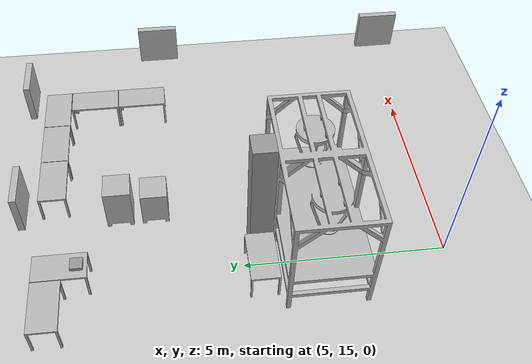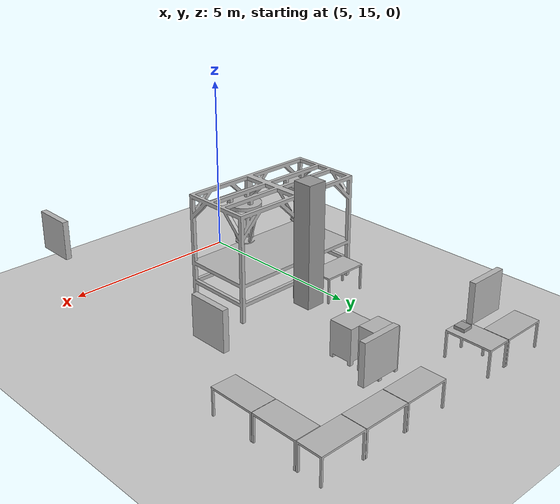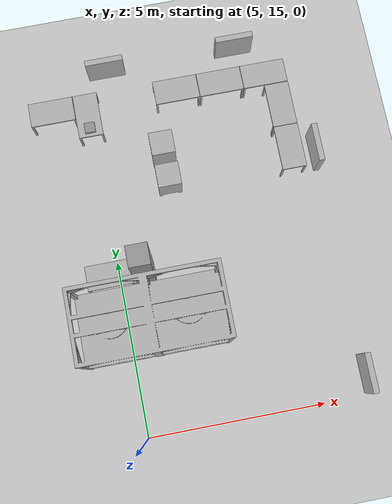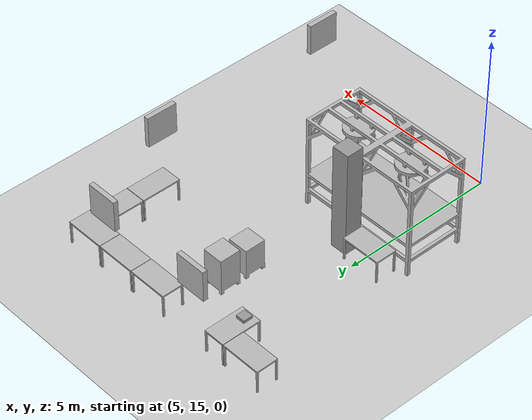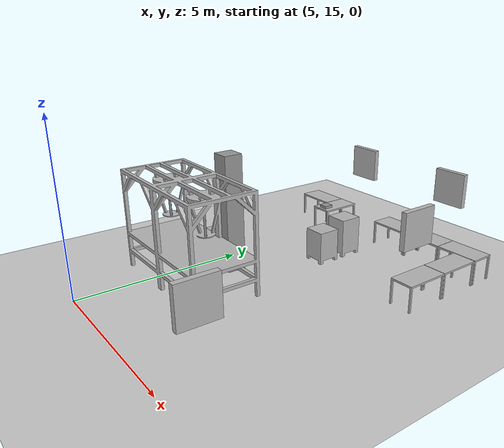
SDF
<sdf version="1.7">
 <world name="default">
  <model name="ground_plane">
   <static>1</static>
   <link name="link">
    <collision name="collision">
     <geometry><plane><normal>0 0 1</normal><size>100 100</size></plane></geometry>
     <surface>
      <contact><collide_bitmask>65535</collide_bitmask></contact>
      <friction><ode><mu>100</mu><mu2>50</mu2></ode></friction>
     </surface>
    </collision>
    <visual name="visual">
     <cast_shadows>0</cast_shadows>
     <geometry><plane><normal>0 0 1</normal><size>100 100</size></plane></geometry>
     <material>
      <script><uri>file://media/materials/scripts/gazebo.material</uri><name>Gazebo/Grey</name></script>
     </material>
    </visual>
   </link>
  </model>
  <model name="crta_stup">
   <link name="link_0">
    <inertial>
     <mass>1</mass>
     <inertia>
      <ixx>0.166667</ixx>
      <ixy>0</ixy>
      <ixz>0</ixz>
      <iyy>0.166667</iyy>
      <iyz>0</iyz>
      <izz>0.166667</izz>
     </inertia>
    </inertial>
    <visual name="visual">
     <geometry><box><size>0.56 0.56 3.5</size></box></geometry>
     <material>
      <lighting>1</lighting>
      <script><uri>file://media/materials/scripts/gazebo.material</uri><name>Gazebo/Grey</name></script>
      <shader type="pixel"><normal_map>__default__</normal_map></shader>
      <ambient>0.3 0.3 0.3 1</ambient>
      <diffuse>0.7 0.7 0.7 1</diffuse>
      <specular>0.01 0.01 0.01 1</specular>
      <emissive>0 0 0 1</emissive>
     </material>
    </visual>
    <collision name="collision">
     <geometry><box><size>0.56 0.56 3.5</size></box></geometry>
     <surface>
      <friction>
       <ode><mu>1</mu><mu2>1</mu2><fdir1>0 0 0</fdir1><slip1>0</slip1><slip2>0</slip2></ode>
       <torsional>
        <coefficient>1</coefficient>
        <patch_radius>0</patch_radius>
        <surface_radius>0</surface_radius>
        <use_patch_radius>1</use_patch_radius>
        <ode><slip>0</slip></ode>
       </torsional>
      </friction>
      <bounce><restitution_coefficient>0</restitution_coefficient><threshold>1e+06</threshold></bounce>
      <contact>
       <collide_without_contact>0</collide_without_contact>
       <collide_without_contact_bitmask>1</collide_without_contact_bitmask>
       <collide_bitmask>1</collide_bitmask>
       <ode>
        <soft_cfm>0</soft_cfm>
        <soft_erp>0.2</soft_erp>
        <kp>1e+13</kp>
        <kd>1</kd>
        <max_vel>0.01</max_vel>
        <min_depth>0</min_depth>
       </ode>
       <bullet>
        <split_impulse>1</split_impulse>
        <split_impulse_penetration_threshold>-0.01</split_impulse_penetration_threshold>
        <soft_cfm>0</soft_cfm>
        <soft_erp>0.2</soft_erp>
        <kp>1e+13</kp>
        <kd>1</kd>
       </bullet>
      </contact>
     </surface>
    </collision>
   </link>
   <static>1</static>
   <pose>5.74 19.52 1.75 0 -0 0</pose>
  </model>
  <model name="stolac1_clone_7_clone_0">
   <static>1</static>
   <link name="base_link">
    <visual name="visual">
     <geometry>
      <mesh><uri>model://stolac1/meshes/crta_stolac1.STL</uri><scale>0.001 0.001 0.001</scale></mesh>
     </geometry>
    </visual>
    <collision name="collision">
     <pose>0.645 0.35 0.375 0 -0 0</pose>
     <geometry><box><size>1.29 0.7 0.75</size></box></geometry>
    </collision>
   </link>
   <pose>3.28164 24.25 0 0 -0 0</pose>
  </model>
  <model name="stolac1_clone_8">
   <static>1</static>
   <link name="base_link">
    <visual name="visual">
     <geometry>
      <mesh><uri>model://stolac1/meshes/crta_stolac1.STL</uri><scale>0.001 0.001 0.001</scale></mesh>
     </geometry>
    </visual>
    <collision name="collision">
     <pose>0.645 0.35 0.375 0 -0 0</pose>
     <geometry><box><size>1.29 0.7 0.75</size></box></geometry>
    </collision>
   </link>
   <pose>5.28721 23.6603 0 0 -0 1.5708</pose>
  </model>
  <model name="stolac1_clone_7_clone_0_clone">
   <static>1</static>
   <link name="base_link">
    <visual name="visual">
     <geometry>
      <mesh><uri>model://stolac1/meshes/crta_stolac1.STL</uri><scale>0.001 0.001 0.001</scale></mesh>
     </geometry>
    </visual>
    <collision name="collision">
     <pose>0.645 0.35 0.375 0 -0 0</pose>
     <geometry><box><size>1.29 0.7 0.75</size></box></geometry>
    </collision>
   </link>
   <pose>9.55232 24.25 0 0 -0 0</pose>
  </model>
  <model name="stolac1_clone_7_clone_0_clone_0">
   <static>1</static>
   <link name="base_link">
    <visual name="visual">
     <geometry>
      <mesh><uri>model://stolac1/meshes/crta_stolac1.STL</uri><scale>0.001 0.001 0.001</scale></mesh>
     </geometry>
    </visual>
    <collision name="collision">
     <pose>0.645 0.35 0.375 0 -0 0</pose>
     <geometry><box><size>1.29 0.7 0.75</size></box></geometry>
    </collision>
   </link>
   <pose>8.2516 24.25 0 0 -0 0</pose>
  </model>
  <model name="stolac1_clone_7_clone_0_clone_1">
   <static>1</static>
   <link name="base_link">
    <visual name="visual">
     <geometry>
      <mesh><uri>model://stolac1/meshes/crta_stolac1.STL</uri><scale>0.001 0.001 0.001</scale></mesh>
     </geometry>
    </visual>
    <collision name="collision">
     <pose>0.645 0.35 0.375 0 -0 0</pose>
     <geometry><box><size>1.29 0.7 0.75</size></box></geometry>
    </collision>
   </link>
   <pose>6.94989 24.25 0 0 -0 0</pose>
  </model>
  <model name="stolac1_clone_8_clone">
   <static>1</static>
   <link name="base_link">
    <visual name="visual">
     <geometry>
      <mesh><uri>model://stolac1/meshes/crta_stolac1.STL</uri><scale>0.001 0.001 0.001</scale></mesh>
     </geometry>
    </visual>
    <collision name="collision">
     <pose>0.645 0.35 0.375 0 -0 0</pose>
     <geometry><box><size>1.29 0.7 0.75</size></box></geometry>
    </collision>
   </link>
   <pose>10.845 22.9418 0 0 -0 1.5708</pose>
  </model>
  <model name="stolac1_clone_8_clone_0">
   <static>1</static>
   <link name="base_link">
    <visual name="visual">
     <geometry>
      <mesh><uri>model://stolac1/meshes/crta_stolac1.STL</uri><scale>0.001 0.001 0.001</scale></mesh>
     </geometry>
    </visual>
    <collision name="collision">
     <pose>0.645 0.35 0.375 0 -0 0</pose>
     <geometry><box><size>1.29 0.7 0.75</size></box></geometry>
    </collision>
   </link>
   <pose>10.8463 21.6409 0 0 -0 1.5708</pose>
  </model>
  <model name="crta_delta_robot">
   <model name="delta_robot">
    <static>1</static>
    <link name="base_link">
     <visual name="visual">
      <geometry>
       <mesh><uri>model://delta_robot/meshes/crta_delta_robot.STL</uri><scale>0.001 0.001 0.001</scale></mesh>
      </geometry>
     </visual>
     <collision name="collision">
      <pose>2 1 1.5 0 -0 0</pose>
      <geometry><box><size>4 2 3</size></box></geometry>
     </collision>
    </link>
    <pose>1e-06 5e-06 0 0 -0 0</pose>
   </model>
   <static>0</static>
   <pose>3.74 17.15 0 0 -0 0</pose>
  </model>
  <model name="stolac1_clone_7_clone_0_clone_1_clone">
   <static>1</static>
   <link name="base_link">
    <visual name="visual">
     <geometry>
      <mesh><uri>model://stolac1/meshes/crta_stolac1.STL</uri><scale>0.001 0.001 0.001</scale></mesh>
     </geometry>
    </visual>
    <collision name="collision">
     <pose>0.645 0.35 0.375 0 -0 0</pose>
     <geometry><box><size>1.29 0.7 0.75</size></box></geometry>
    </collision>
   </link>
   <pose>4.10999 19.2429 0 0 -0 0</pose>
  </model>
  <model name="kutija1_0_clone_0">
   <static>1</static>
   <link name="base_link">
    <visual name="visual">
     <geometry>
      <mesh><uri>model://kutija2/meshes/crta_kutija2.STL</uri><scale>0.001 0.001 0.001</scale></mesh>
     </geometry>
    </visual>
    <collision name="collision">
     <pose>0.335 0.335 0.5 0 -0 0</pose>
     <geometry><box><size>0.67 0.67 1</size></box></geometry>
    </collision>
   </link>
   <pose>6.55778 21.7269 0 0 -0 0</pose>
  </model>
  <model name="kutija1_clone_1_clone">
   <static>1</static>
   <link name="base_link">
    <visual name="visual">
     <geometry>
      <mesh><uri>model://kutija1/meshes/crta_kutija1.STL</uri><scale>0.001 0.001 0.001</scale></mesh>
     </geometry>
    </visual>
    <collision name="collision">
     <pose>0.335 0.335 0.6 0 -0 0</pose>
     <geometry><box><size>0.67 0.67 1.2</size></box></geometry>
    </collision>
   </link>
   <pose>6.54763 22.6166 0 0 -0 0</pose>
  </model>
  <model name="crta_astro_clone_1">
   <link name="link_1">
    <inertial>
     <mass>1</mass>
     <inertia>
      <ixx>0.166667</ixx>
      <ixy>0</ixy>
      <ixz>0</ixz>
      <iyy>0.166667</iyy>
      <iyz>0</iyz>
      <izz>0.166667</izz>
     </inertia>
    </inertial>
    <visual name="visual">
     <geometry><box><size>0.3 0.3 0.09</size></box></geometry>
     <material>
      <lighting>1</lighting>
      <script><uri>file://media/materials/scripts/gazebo.material</uri><name>Gazebo/Grey</name></script>
      <shader type="pixel"><normal_map>__default__</normal_map></shader>
      <ambient>0.3 0.3 0.3 1</ambient>
      <diffuse>0.7 0.7 0.7 1</diffuse>
      <specular>0.01 0.01 0.01 1</specular>
      <emissive>0 0 0 1</emissive>
     </material>
    </visual>
    <collision name="collision">
     <geometry><box><size>0.3 0.3 0.09</size></box></geometry>
     <surface>
      <friction>
       <ode><mu>1</mu><mu2>1</mu2><fdir1>0 0 0</fdir1><slip1>0</slip1><slip2>0</slip2></ode>
       <torsional>
        <coefficient>1</coefficient>
        <patch_radius>0</patch_radius>
        <surface_radius>0</surface_radius>
        <use_patch_radius>1</use_patch_radius>
        <ode><slip>0</slip></ode>
       </torsional>
      </friction>
      <bounce><restitution_coefficient>0</restitution_coefficient><threshold>1e+06</threshold></bounce>
      <contact>
       <collide_without_contact>0</collide_without_contact>
       <collide_without_contact_bitmask>1</collide_without_contact_bitmask>
       <collide_bitmask>1</collide_bitmask>
       <ode>
        <soft_cfm>0</soft_cfm>
        <soft_erp>0.2</soft_erp>
        <kp>1e+13</kp>
        <kd>1</kd>
        <max_vel>0.01</max_vel>
        <min_depth>0</min_depth>
       </ode>
       <bullet>
        <split_impulse>1</split_impulse>
        <split_impulse_penetration_threshold>-0.01</split_impulse_penetration_threshold>
        <soft_cfm>0</soft_cfm>
        <soft_erp>0.2</soft_erp>
        <kp>1e+13</kp>
        <kd>1</kd>
       </bullet>
      </contact>
     </surface>
    </collision>
   </link>
   <static>0</static>
   <pose>4.93996 23.9015 0.795 -0 -0 -0</pose>
  </model>
  <model name="poster_clone">
   <static>1</static>
   <link name="poster_link">
    <collision name="poster_collision">
     <geometry><box><size>1 0.15 1</size></box></geometry>
     <surface><contact><collide_without_contact>1</collide_without_contact></contact></surface>
    </collision>
    <visual name="poster_visual">
     <geometry><box><size>1 0.15 1</size></box></geometry>
     <material>
      <script>
       <uri>model://poster/materials/scripts</uri>
       <uri>model://poster/materials/textures</uri>
       <name>Poster/PosterTexture</name>
      </script>
     </material>
    </visual>
   </link>
   <pose>5.74334 24.925 2.34482 0 -0 0</pose>
  </model>
  <model name="poster_clone_clone">
   <static>1</static>
   <link name="poster_link">
    <collision name="poster_collision">
     <geometry><box><size>1 0.15 1</size></box></geometry>
     <surface><contact><collide_without_contact>1</collide_without_contact></contact></surface>
    </collision>
    <visual name="poster_visual">
     <geometry><box><size>1 0.15 1</size></box></geometry>
     <material>
      <script>
       <uri>model://poster/materials/scripts</uri>
       <uri>model://poster/materials/textures</uri>
       <name>Poster/PosterTexture</name>
      </script>
     </material>
    </visual>
   </link>
   <pose>9.25875 24.925 2.34482 0 -0 0</pose>
  </model>
  <model name="poster_clone_clone_0">
   <static>1</static>
   <link name="poster_link">
    <collision name="poster_collision">
     <geometry><box><size>1 0.15 1</size></box></geometry>
     <surface><contact><collide_without_contact>1</collide_without_contact></contact></surface>
    </collision>
    <visual name="poster_visual">
     <geometry><box><size>1 0.15 1</size></box></geometry>
     <material>
      <script>
       <uri>model://poster/materials/scripts</uri>
       <uri>model://poster/materials/textures</uri>
       <name>Poster/PosterTexture</name>
      </script>
     </material>
    </visual>
   </link>
   <pose>10.8233 21.6735 2.34482 0 0 -1.5708</pose>
  </model>
  <model name="poster_clone_clone_0_clone">
   <static>1</static>
   <link name="poster_link">
    <collision name="poster_collision">
     <geometry><box><size>1 0.15 1</size></box></geometry>
     <surface><contact><collide_without_contact>1</collide_without_contact></contact></surface>
    </collision>
    <visual name="poster_visual">
     <geometry><box><size>1 0.15 1</size></box></geometry>
     <material>
      <script>
       <uri>model://poster/materials/scripts</uri>
       <uri>model://poster/materials/textures</uri>
       <name>Poster/PosterTexture</name>
      </script>
     </material>
    </visual>
   </link>
   <pose>10.823 15.6754 2.34482 0 0 -1.5708</pose>
  </model>
 </world>
</sdf>
